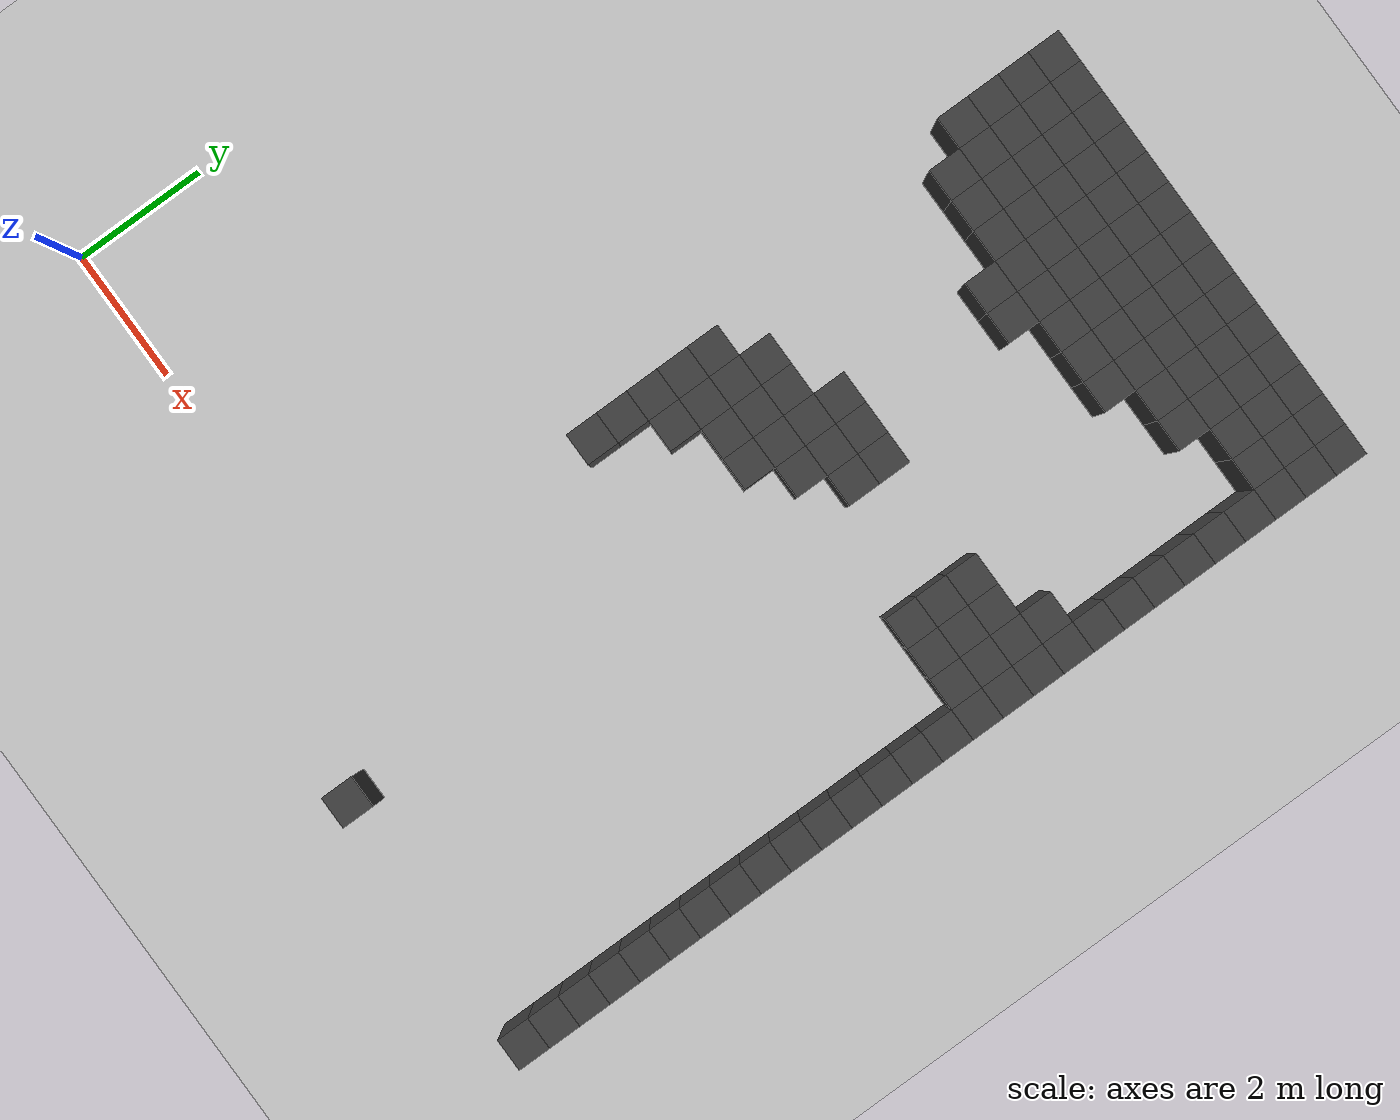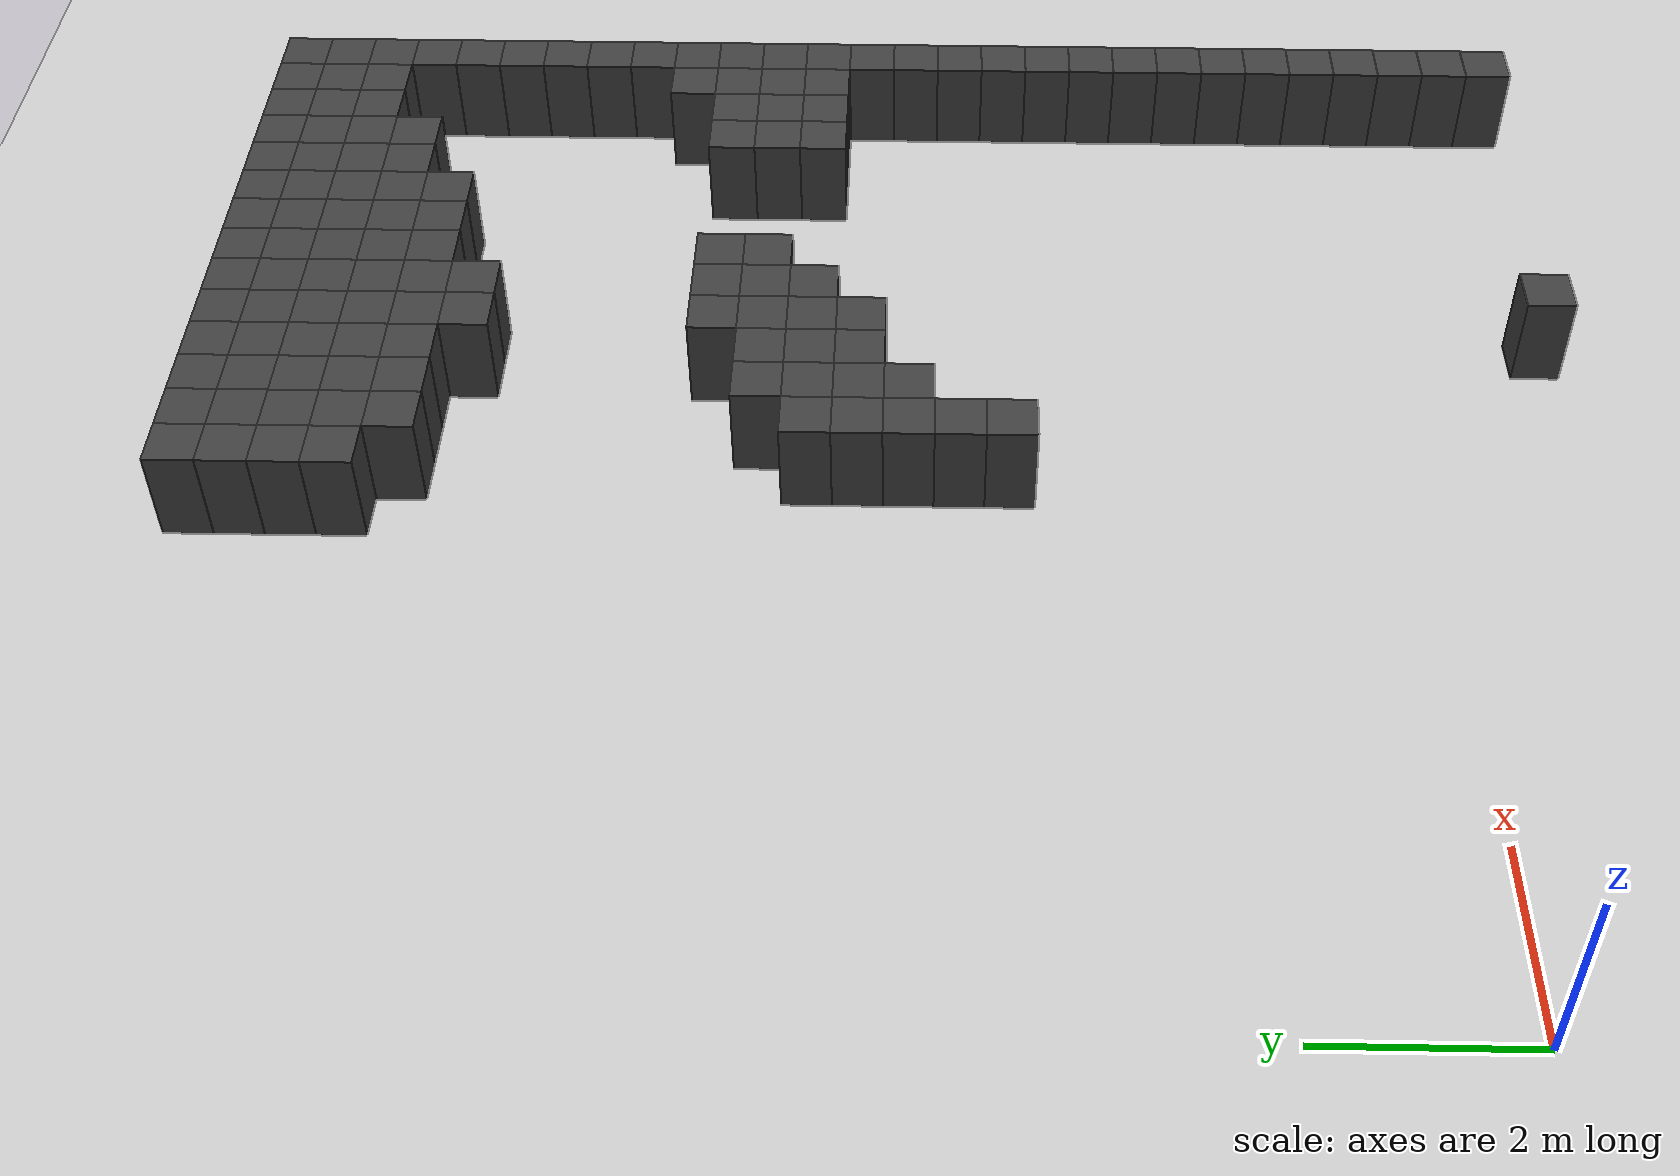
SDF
<sdf version="1.7">
 <world name="map_9381">
  <model name="ground_plane">
   <static>true</static>
   <link name="link">
    <collision name="collision">
     <geometry><plane><normal>0 0 1</normal><size>200 200</size></plane></geometry>
    </collision>
    <visual name="visual">
     <geometry><plane><normal>0 0 1</normal><size>200 200</size></plane></geometry>
     <material><ambient>0.8 0.8 0.8 1</ambient><diffuse>0.8 0.8 0.8 1</diffuse></material>
    </visual>
   </link>
  </model>
  <model name="maze_environment">
   <static>true</static>
   <link name="wall_36">
    <pose>5.750 12.250 0.500 0 0 0</pose>
    <collision name="col"><geometry><box><size>0.5 0.5 1.0</size></box></geometry></collision>
    <visual name="vis">
     <geometry><box><size>0.5 0.5 1.0</size></box></geometry>
     <material><ambient>0.15 0.15 0.15 1</ambient><diffuse>0.25 0.25 0.25 1</diffuse></material>
    </visual>
   </link>
   <link name="wall_37">
    <pose>6.250 12.250 0.500 0 0 0</pose>
    <collision name="col"><geometry><box><size>0.5 0.5 1.0</size></box></geometry></collision>
    <visual name="vis">
     <geometry><box><size>0.5 0.5 1.0</size></box></geometry>
     <material><ambient>0.15 0.15 0.15 1</ambient><diffuse>0.25 0.25 0.25 1</diffuse></material>
    </visual>
   </link>
   <link name="wall_38">
    <pose>6.750 12.250 0.500 0 0 0</pose>
    <collision name="col"><geometry><box><size>0.5 0.5 1.0</size></box></geometry></collision>
    <visual name="vis">
     <geometry><box><size>0.5 0.5 1.0</size></box></geometry>
     <material><ambient>0.15 0.15 0.15 1</ambient><diffuse>0.25 0.25 0.25 1</diffuse></material>
    </visual>
   </link>
   <link name="wall_39">
    <pose>7.250 12.250 0.500 0 0 0</pose>
    <collision name="col"><geometry><box><size>0.5 0.5 1.0</size></box></geometry></collision>
    <visual name="vis">
     <geometry><box><size>0.5 0.5 1.0</size></box></geometry>
     <material><ambient>0.15 0.15 0.15 1</ambient><diffuse>0.25 0.25 0.25 1</diffuse></material>
    </visual>
   </link>
   <link name="wall_40">
    <pose>7.750 12.250 0.500 0 0 0</pose>
    <collision name="col"><geometry><box><size>0.5 0.5 1.0</size></box></geometry></collision>
    <visual name="vis">
     <geometry><box><size>0.5 0.5 1.0</size></box></geometry>
     <material><ambient>0.15 0.15 0.15 1</ambient><diffuse>0.25 0.25 0.25 1</diffuse></material>
    </visual>
   </link>
   <link name="wall_41">
    <pose>8.250 12.250 0.500 0 0 0</pose>
    <collision name="col"><geometry><box><size>0.5 0.5 1.0</size></box></geometry></collision>
    <visual name="vis">
     <geometry><box><size>0.5 0.5 1.0</size></box></geometry>
     <material><ambient>0.15 0.15 0.15 1</ambient><diffuse>0.25 0.25 0.25 1</diffuse></material>
    </visual>
   </link>
   <link name="wall_42">
    <pose>8.750 12.250 0.500 0 0 0</pose>
    <collision name="col"><geometry><box><size>0.5 0.5 1.0</size></box></geometry></collision>
    <visual name="vis">
     <geometry><box><size>0.5 0.5 1.0</size></box></geometry>
     <material><ambient>0.15 0.15 0.15 1</ambient><diffuse>0.25 0.25 0.25 1</diffuse></material>
    </visual>
   </link>
   <link name="wall_43">
    <pose>9.250 12.250 0.500 0 0 0</pose>
    <collision name="col"><geometry><box><size>0.5 0.5 1.0</size></box></geometry></collision>
    <visual name="vis">
     <geometry><box><size>0.5 0.5 1.0</size></box></geometry>
     <material><ambient>0.15 0.15 0.15 1</ambient><diffuse>0.25 0.25 0.25 1</diffuse></material>
    </visual>
   </link>
   <link name="wall_44">
    <pose>9.750 12.250 0.500 0 0 0</pose>
    <collision name="col"><geometry><box><size>0.5 0.5 1.0</size></box></geometry></collision>
    <visual name="vis">
     <geometry><box><size>0.5 0.5 1.0</size></box></geometry>
     <material><ambient>0.15 0.15 0.15 1</ambient><diffuse>0.25 0.25 0.25 1</diffuse></material>
    </visual>
   </link>
   <link name="wall_45">
    <pose>10.250 12.250 0.500 0 0 0</pose>
    <collision name="col"><geometry><box><size>0.5 0.5 1.0</size></box></geometry></collision>
    <visual name="vis">
     <geometry><box><size>0.5 0.5 1.0</size></box></geometry>
     <material><ambient>0.15 0.15 0.15 1</ambient><diffuse>0.25 0.25 0.25 1</diffuse></material>
    </visual>
   </link>
   <link name="wall_46">
    <pose>10.750 12.250 0.500 0 0 0</pose>
    <collision name="col"><geometry><box><size>0.5 0.5 1.0</size></box></geometry></collision>
    <visual name="vis">
     <geometry><box><size>0.5 0.5 1.0</size></box></geometry>
     <material><ambient>0.15 0.15 0.15 1</ambient><diffuse>0.25 0.25 0.25 1</diffuse></material>
    </visual>
   </link>
   <link name="wall_47">
    <pose>11.250 12.250 0.500 0 0 0</pose>
    <collision name="col"><geometry><box><size>0.5 0.5 1.0</size></box></geometry></collision>
    <visual name="vis">
     <geometry><box><size>0.5 0.5 1.0</size></box></geometry>
     <material><ambient>0.15 0.15 0.15 1</ambient><diffuse>0.25 0.25 0.25 1</diffuse></material>
    </visual>
   </link>
   <link name="wall_48">
    <pose>11.750 12.250 0.500 0 0 0</pose>
    <collision name="col"><geometry><box><size>0.5 0.5 1.0</size></box></geometry></collision>
    <visual name="vis">
     <geometry><box><size>0.5 0.5 1.0</size></box></geometry>
     <material><ambient>0.15 0.15 0.15 1</ambient><diffuse>0.25 0.25 0.25 1</diffuse></material>
    </visual>
   </link>
   <link name="wall_49">
    <pose>12.250 12.250 0.500 0 0 0</pose>
    <collision name="col"><geometry><box><size>0.5 0.5 1.0</size></box></geometry></collision>
    <visual name="vis">
     <geometry><box><size>0.5 0.5 1.0</size></box></geometry>
     <material><ambient>0.15 0.15 0.15 1</ambient><diffuse>0.25 0.25 0.25 1</diffuse></material>
    </visual>
   </link>
   <link name="wall_71">
    <pose>5.750 11.750 0.500 0 0 0</pose>
    <collision name="col"><geometry><box><size>0.5 0.5 1.0</size></box></geometry></collision>
    <visual name="vis">
     <geometry><box><size>0.5 0.5 1.0</size></box></geometry>
     <material><ambient>0.15 0.15 0.15 1</ambient><diffuse>0.25 0.25 0.25 1</diffuse></material>
    </visual>
   </link>
   <link name="wall_72">
    <pose>6.250 11.750 0.500 0 0 0</pose>
    <collision name="col"><geometry><box><size>0.5 0.5 1.0</size></box></geometry></collision>
    <visual name="vis">
     <geometry><box><size>0.5 0.5 1.0</size></box></geometry>
     <material><ambient>0.15 0.15 0.15 1</ambient><diffuse>0.25 0.25 0.25 1</diffuse></material>
    </visual>
   </link>
   <link name="wall_73">
    <pose>6.750 11.750 0.500 0 0 0</pose>
    <collision name="col"><geometry><box><size>0.5 0.5 1.0</size></box></geometry></collision>
    <visual name="vis">
     <geometry><box><size>0.5 0.5 1.0</size></box></geometry>
     <material><ambient>0.15 0.15 0.15 1</ambient><diffuse>0.25 0.25 0.25 1</diffuse></material>
    </visual>
   </link>
   <link name="wall_74">
    <pose>7.250 11.750 0.500 0 0 0</pose>
    <collision name="col"><geometry><box><size>0.5 0.5 1.0</size></box></geometry></collision>
    <visual name="vis">
     <geometry><box><size>0.5 0.5 1.0</size></box></geometry>
     <material><ambient>0.15 0.15 0.15 1</ambient><diffuse>0.25 0.25 0.25 1</diffuse></material>
    </visual>
   </link>
   <link name="wall_75">
    <pose>7.750 11.750 0.500 0 0 0</pose>
    <collision name="col"><geometry><box><size>0.5 0.5 1.0</size></box></geometry></collision>
    <visual name="vis">
     <geometry><box><size>0.5 0.5 1.0</size></box></geometry>
     <material><ambient>0.15 0.15 0.15 1</ambient><diffuse>0.25 0.25 0.25 1</diffuse></material>
    </visual>
   </link>
   <link name="wall_76">
    <pose>8.250 11.750 0.500 0 0 0</pose>
    <collision name="col"><geometry><box><size>0.5 0.5 1.0</size></box></geometry></collision>
    <visual name="vis">
     <geometry><box><size>0.5 0.5 1.0</size></box></geometry>
     <material><ambient>0.15 0.15 0.15 1</ambient><diffuse>0.25 0.25 0.25 1</diffuse></material>
    </visual>
   </link>
   <link name="wall_77">
    <pose>8.750 11.750 0.500 0 0 0</pose>
    <collision name="col"><geometry><box><size>0.5 0.5 1.0</size></box></geometry></collision>
    <visual name="vis">
     <geometry><box><size>0.5 0.5 1.0</size></box></geometry>
     <material><ambient>0.15 0.15 0.15 1</ambient><diffuse>0.25 0.25 0.25 1</diffuse></material>
    </visual>
   </link>
   <link name="wall_78">
    <pose>9.250 11.750 0.500 0 0 0</pose>
    <collision name="col"><geometry><box><size>0.5 0.5 1.0</size></box></geometry></collision>
    <visual name="vis">
     <geometry><box><size>0.5 0.5 1.0</size></box></geometry>
     <material><ambient>0.15 0.15 0.15 1</ambient><diffuse>0.25 0.25 0.25 1</diffuse></material>
    </visual>
   </link>
   <link name="wall_79">
    <pose>9.750 11.750 0.500 0 0 0</pose>
    <collision name="col"><geometry><box><size>0.5 0.5 1.0</size></box></geometry></collision>
    <visual name="vis">
     <geometry><box><size>0.5 0.5 1.0</size></box></geometry>
     <material><ambient>0.15 0.15 0.15 1</ambient><diffuse>0.25 0.25 0.25 1</diffuse></material>
    </visual>
   </link>
   <link name="wall_80">
    <pose>10.250 11.750 0.500 0 0 0</pose>
    <collision name="col"><geometry><box><size>0.5 0.5 1.0</size></box></geometry></collision>
    <visual name="vis">
     <geometry><box><size>0.5 0.5 1.0</size></box></geometry>
     <material><ambient>0.15 0.15 0.15 1</ambient><diffuse>0.25 0.25 0.25 1</diffuse></material>
    </visual>
   </link>
   <link name="wall_81">
    <pose>10.750 11.750 0.500 0 0 0</pose>
    <collision name="col"><geometry><box><size>0.5 0.5 1.0</size></box></geometry></collision>
    <visual name="vis">
     <geometry><box><size>0.5 0.5 1.0</size></box></geometry>
     <material><ambient>0.15 0.15 0.15 1</ambient><diffuse>0.25 0.25 0.25 1</diffuse></material>
    </visual>
   </link>
   <link name="wall_82">
    <pose>11.250 11.750 0.500 0 0 0</pose>
    <collision name="col"><geometry><box><size>0.5 0.5 1.0</size></box></geometry></collision>
    <visual name="vis">
     <geometry><box><size>0.5 0.5 1.0</size></box></geometry>
     <material><ambient>0.15 0.15 0.15 1</ambient><diffuse>0.25 0.25 0.25 1</diffuse></material>
    </visual>
   </link>
   <link name="wall_83">
    <pose>11.750 11.750 0.500 0 0 0</pose>
    <collision name="col"><geometry><box><size>0.5 0.5 1.0</size></box></geometry></collision>
    <visual name="vis">
     <geometry><box><size>0.5 0.5 1.0</size></box></geometry>
     <material><ambient>0.15 0.15 0.15 1</ambient><diffuse>0.25 0.25 0.25 1</diffuse></material>
    </visual>
   </link>
   <link name="wall_84">
    <pose>12.250 11.750 0.500 0 0 0</pose>
    <collision name="col"><geometry><box><size>0.5 0.5 1.0</size></box></geometry></collision>
    <visual name="vis">
     <geometry><box><size>0.5 0.5 1.0</size></box></geometry>
     <material><ambient>0.15 0.15 0.15 1</ambient><diffuse>0.25 0.25 0.25 1</diffuse></material>
    </visual>
   </link>
   <link name="wall_101">
    <pose>5.750 11.250 0.500 0 0 0</pose>
    <collision name="col"><geometry><box><size>0.5 0.5 1.0</size></box></geometry></collision>
    <visual name="vis">
     <geometry><box><size>0.5 0.5 1.0</size></box></geometry>
     <material><ambient>0.15 0.15 0.15 1</ambient><diffuse>0.25 0.25 0.25 1</diffuse></material>
    </visual>
   </link>
   <link name="wall_102">
    <pose>6.250 11.250 0.500 0 0 0</pose>
    <collision name="col"><geometry><box><size>0.5 0.5 1.0</size></box></geometry></collision>
    <visual name="vis">
     <geometry><box><size>0.5 0.5 1.0</size></box></geometry>
     <material><ambient>0.15 0.15 0.15 1</ambient><diffuse>0.25 0.25 0.25 1</diffuse></material>
    </visual>
   </link>
   <link name="wall_103">
    <pose>6.750 11.250 0.500 0 0 0</pose>
    <collision name="col"><geometry><box><size>0.5 0.5 1.0</size></box></geometry></collision>
    <visual name="vis">
     <geometry><box><size>0.5 0.5 1.0</size></box></geometry>
     <material><ambient>0.15 0.15 0.15 1</ambient><diffuse>0.25 0.25 0.25 1</diffuse></material>
    </visual>
   </link>
   <link name="wall_104">
    <pose>7.250 11.250 0.500 0 0 0</pose>
    <collision name="col"><geometry><box><size>0.5 0.5 1.0</size></box></geometry></collision>
    <visual name="vis">
     <geometry><box><size>0.5 0.5 1.0</size></box></geometry>
     <material><ambient>0.15 0.15 0.15 1</ambient><diffuse>0.25 0.25 0.25 1</diffuse></material>
    </visual>
   </link>
   <link name="wall_105">
    <pose>7.750 11.250 0.500 0 0 0</pose>
    <collision name="col"><geometry><box><size>0.5 0.5 1.0</size></box></geometry></collision>
    <visual name="vis">
     <geometry><box><size>0.5 0.5 1.0</size></box></geometry>
     <material><ambient>0.15 0.15 0.15 1</ambient><diffuse>0.25 0.25 0.25 1</diffuse></material>
    </visual>
   </link>
   <link name="wall_106">
    <pose>8.250 11.250 0.500 0 0 0</pose>
    <collision name="col"><geometry><box><size>0.5 0.5 1.0</size></box></geometry></collision>
    <visual name="vis">
     <geometry><box><size>0.5 0.5 1.0</size></box></geometry>
     <material><ambient>0.15 0.15 0.15 1</ambient><diffuse>0.25 0.25 0.25 1</diffuse></material>
    </visual>
   </link>
   <link name="wall_107">
    <pose>8.750 11.250 0.500 0 0 0</pose>
    <collision name="col"><geometry><box><size>0.5 0.5 1.0</size></box></geometry></collision>
    <visual name="vis">
     <geometry><box><size>0.5 0.5 1.0</size></box></geometry>
     <material><ambient>0.15 0.15 0.15 1</ambient><diffuse>0.25 0.25 0.25 1</diffuse></material>
    </visual>
   </link>
   <link name="wall_108">
    <pose>9.250 11.250 0.500 0 0 0</pose>
    <collision name="col"><geometry><box><size>0.5 0.5 1.0</size></box></geometry></collision>
    <visual name="vis">
     <geometry><box><size>0.5 0.5 1.0</size></box></geometry>
     <material><ambient>0.15 0.15 0.15 1</ambient><diffuse>0.25 0.25 0.25 1</diffuse></material>
    </visual>
   </link>
   <link name="wall_109">
    <pose>9.750 11.250 0.500 0 0 0</pose>
    <collision name="col"><geometry><box><size>0.5 0.5 1.0</size></box></geometry></collision>
    <visual name="vis">
     <geometry><box><size>0.5 0.5 1.0</size></box></geometry>
     <material><ambient>0.15 0.15 0.15 1</ambient><diffuse>0.25 0.25 0.25 1</diffuse></material>
    </visual>
   </link>
   <link name="wall_110">
    <pose>10.250 11.250 0.500 0 0 0</pose>
    <collision name="col"><geometry><box><size>0.5 0.5 1.0</size></box></geometry></collision>
    <visual name="vis">
     <geometry><box><size>0.5 0.5 1.0</size></box></geometry>
     <material><ambient>0.15 0.15 0.15 1</ambient><diffuse>0.25 0.25 0.25 1</diffuse></material>
    </visual>
   </link>
   <link name="wall_111">
    <pose>10.750 11.250 0.500 0 0 0</pose>
    <collision name="col"><geometry><box><size>0.5 0.5 1.0</size></box></geometry></collision>
    <visual name="vis">
     <geometry><box><size>0.5 0.5 1.0</size></box></geometry>
     <material><ambient>0.15 0.15 0.15 1</ambient><diffuse>0.25 0.25 0.25 1</diffuse></material>
    </visual>
   </link>
   <link name="wall_112">
    <pose>11.250 11.250 0.500 0 0 0</pose>
    <collision name="col"><geometry><box><size>0.5 0.5 1.0</size></box></geometry></collision>
    <visual name="vis">
     <geometry><box><size>0.5 0.5 1.0</size></box></geometry>
     <material><ambient>0.15 0.15 0.15 1</ambient><diffuse>0.25 0.25 0.25 1</diffuse></material>
    </visual>
   </link>
   <link name="wall_113">
    <pose>11.750 11.250 0.500 0 0 0</pose>
    <collision name="col"><geometry><box><size>0.5 0.5 1.0</size></box></geometry></collision>
    <visual name="vis">
     <geometry><box><size>0.5 0.5 1.0</size></box></geometry>
     <material><ambient>0.15 0.15 0.15 1</ambient><diffuse>0.25 0.25 0.25 1</diffuse></material>
    </visual>
   </link>
   <link name="wall_114">
    <pose>12.250 11.250 0.500 0 0 0</pose>
    <collision name="col"><geometry><box><size>0.5 0.5 1.0</size></box></geometry></collision>
    <visual name="vis">
     <geometry><box><size>0.5 0.5 1.0</size></box></geometry>
     <material><ambient>0.15 0.15 0.15 1</ambient><diffuse>0.25 0.25 0.25 1</diffuse></material>
    </visual>
   </link>
   <link name="wall_129">
    <pose>5.750 10.750 0.500 0 0 0</pose>
    <collision name="col"><geometry><box><size>0.5 0.5 1.0</size></box></geometry></collision>
    <visual name="vis">
     <geometry><box><size>0.5 0.5 1.0</size></box></geometry>
     <material><ambient>0.15 0.15 0.15 1</ambient><diffuse>0.25 0.25 0.25 1</diffuse></material>
    </visual>
   </link>
   <link name="wall_130">
    <pose>6.250 10.750 0.500 0 0 0</pose>
    <collision name="col"><geometry><box><size>0.5 0.5 1.0</size></box></geometry></collision>
    <visual name="vis">
     <geometry><box><size>0.5 0.5 1.0</size></box></geometry>
     <material><ambient>0.15 0.15 0.15 1</ambient><diffuse>0.25 0.25 0.25 1</diffuse></material>
    </visual>
   </link>
   <link name="wall_131">
    <pose>6.750 10.750 0.500 0 0 0</pose>
    <collision name="col"><geometry><box><size>0.5 0.5 1.0</size></box></geometry></collision>
    <visual name="vis">
     <geometry><box><size>0.5 0.5 1.0</size></box></geometry>
     <material><ambient>0.15 0.15 0.15 1</ambient><diffuse>0.25 0.25 0.25 1</diffuse></material>
    </visual>
   </link>
   <link name="wall_132">
    <pose>7.250 10.750 0.500 0 0 0</pose>
    <collision name="col"><geometry><box><size>0.5 0.5 1.0</size></box></geometry></collision>
    <visual name="vis">
     <geometry><box><size>0.5 0.5 1.0</size></box></geometry>
     <material><ambient>0.15 0.15 0.15 1</ambient><diffuse>0.25 0.25 0.25 1</diffuse></material>
    </visual>
   </link>
   <link name="wall_133">
    <pose>7.750 10.750 0.500 0 0 0</pose>
    <collision name="col"><geometry><box><size>0.5 0.5 1.0</size></box></geometry></collision>
    <visual name="vis">
     <geometry><box><size>0.5 0.5 1.0</size></box></geometry>
     <material><ambient>0.15 0.15 0.15 1</ambient><diffuse>0.25 0.25 0.25 1</diffuse></material>
    </visual>
   </link>
   <link name="wall_134">
    <pose>8.250 10.750 0.500 0 0 0</pose>
    <collision name="col"><geometry><box><size>0.5 0.5 1.0</size></box></geometry></collision>
    <visual name="vis">
     <geometry><box><size>0.5 0.5 1.0</size></box></geometry>
     <material><ambient>0.15 0.15 0.15 1</ambient><diffuse>0.25 0.25 0.25 1</diffuse></material>
    </visual>
   </link>
   <link name="wall_135">
    <pose>8.750 10.750 0.500 0 0 0</pose>
    <collision name="col"><geometry><box><size>0.5 0.5 1.0</size></box></geometry></collision>
    <visual name="vis">
     <geometry><box><size>0.5 0.5 1.0</size></box></geometry>
     <material><ambient>0.15 0.15 0.15 1</ambient><diffuse>0.25 0.25 0.25 1</diffuse></material>
    </visual>
   </link>
   <link name="wall_136">
    <pose>9.250 10.750 0.500 0 0 0</pose>
    <collision name="col"><geometry><box><size>0.5 0.5 1.0</size></box></geometry></collision>
    <visual name="vis">
     <geometry><box><size>0.5 0.5 1.0</size></box></geometry>
     <material><ambient>0.15 0.15 0.15 1</ambient><diffuse>0.25 0.25 0.25 1</diffuse></material>
    </visual>
   </link>
   <link name="wall_137">
    <pose>9.750 10.750 0.500 0 0 0</pose>
    <collision name="col"><geometry><box><size>0.5 0.5 1.0</size></box></geometry></collision>
    <visual name="vis">
     <geometry><box><size>0.5 0.5 1.0</size></box></geometry>
     <material><ambient>0.15 0.15 0.15 1</ambient><diffuse>0.25 0.25 0.25 1</diffuse></material>
    </visual>
   </link>
   <link name="wall_138">
    <pose>10.250 10.750 0.500 0 0 0</pose>
    <collision name="col"><geometry><box><size>0.5 0.5 1.0</size></box></geometry></collision>
    <visual name="vis">
     <geometry><box><size>0.5 0.5 1.0</size></box></geometry>
     <material><ambient>0.15 0.15 0.15 1</ambient><diffuse>0.25 0.25 0.25 1</diffuse></material>
    </visual>
   </link>
   <link name="wall_139">
    <pose>10.750 10.750 0.500 0 0 0</pose>
    <collision name="col"><geometry><box><size>0.5 0.5 1.0</size></box></geometry></collision>
    <visual name="vis">
     <geometry><box><size>0.5 0.5 1.0</size></box></geometry>
     <material><ambient>0.15 0.15 0.15 1</ambient><diffuse>0.25 0.25 0.25 1</diffuse></material>
    </visual>
   </link>
   <link name="wall_140">
    <pose>12.250 10.750 0.500 0 0 0</pose>
    <collision name="col"><geometry><box><size>0.5 0.5 1.0</size></box></geometry></collision>
    <visual name="vis">
     <geometry><box><size>0.5 0.5 1.0</size></box></geometry>
     <material><ambient>0.15 0.15 0.15 1</ambient><diffuse>0.25 0.25 0.25 1</diffuse></material>
    </visual>
   </link>
   <link name="wall_156">
    <pose>6.250 10.250 0.500 0 0 0</pose>
    <collision name="col"><geometry><box><size>0.5 0.5 1.0</size></box></geometry></collision>
    <visual name="vis">
     <geometry><box><size>0.5 0.5 1.0</size></box></geometry>
     <material><ambient>0.15 0.15 0.15 1</ambient><diffuse>0.25 0.25 0.25 1</diffuse></material>
    </visual>
   </link>
   <link name="wall_157">
    <pose>6.750 10.250 0.500 0 0 0</pose>
    <collision name="col"><geometry><box><size>0.5 0.5 1.0</size></box></geometry></collision>
    <visual name="vis">
     <geometry><box><size>0.5 0.5 1.0</size></box></geometry>
     <material><ambient>0.15 0.15 0.15 1</ambient><diffuse>0.25 0.25 0.25 1</diffuse></material>
    </visual>
   </link>
   <link name="wall_158">
    <pose>7.250 10.250 0.500 0 0 0</pose>
    <collision name="col"><geometry><box><size>0.5 0.5 1.0</size></box></geometry></collision>
    <visual name="vis">
     <geometry><box><size>0.5 0.5 1.0</size></box></geometry>
     <material><ambient>0.15 0.15 0.15 1</ambient><diffuse>0.25 0.25 0.25 1</diffuse></material>
    </visual>
   </link>
   <link name="wall_159">
    <pose>7.750 10.250 0.500 0 0 0</pose>
    <collision name="col"><geometry><box><size>0.5 0.5 1.0</size></box></geometry></collision>
    <visual name="vis">
     <geometry><box><size>0.5 0.5 1.0</size></box></geometry>
     <material><ambient>0.15 0.15 0.15 1</ambient><diffuse>0.25 0.25 0.25 1</diffuse></material>
    </visual>
   </link>
   <link name="wall_160">
    <pose>8.250 10.250 0.500 0 0 0</pose>
    <collision name="col"><geometry><box><size>0.5 0.5 1.0</size></box></geometry></collision>
    <visual name="vis">
     <geometry><box><size>0.5 0.5 1.0</size></box></geometry>
     <material><ambient>0.15 0.15 0.15 1</ambient><diffuse>0.25 0.25 0.25 1</diffuse></material>
    </visual>
   </link>
   <link name="wall_161">
    <pose>8.750 10.250 0.500 0 0 0</pose>
    <collision name="col"><geometry><box><size>0.5 0.5 1.0</size></box></geometry></collision>
    <visual name="vis">
     <geometry><box><size>0.5 0.5 1.0</size></box></geometry>
     <material><ambient>0.15 0.15 0.15 1</ambient><diffuse>0.25 0.25 0.25 1</diffuse></material>
    </visual>
   </link>
   <link name="wall_162">
    <pose>9.250 10.250 0.500 0 0 0</pose>
    <collision name="col"><geometry><box><size>0.5 0.5 1.0</size></box></geometry></collision>
    <visual name="vis">
     <geometry><box><size>0.5 0.5 1.0</size></box></geometry>
     <material><ambient>0.15 0.15 0.15 1</ambient><diffuse>0.25 0.25 0.25 1</diffuse></material>
    </visual>
   </link>
   <link name="wall_163">
    <pose>9.750 10.250 0.500 0 0 0</pose>
    <collision name="col"><geometry><box><size>0.5 0.5 1.0</size></box></geometry></collision>
    <visual name="vis">
     <geometry><box><size>0.5 0.5 1.0</size></box></geometry>
     <material><ambient>0.15 0.15 0.15 1</ambient><diffuse>0.25 0.25 0.25 1</diffuse></material>
    </visual>
   </link>
   <link name="wall_164">
    <pose>12.250 10.250 0.500 0 0 0</pose>
    <collision name="col"><geometry><box><size>0.5 0.5 1.0</size></box></geometry></collision>
    <visual name="vis">
     <geometry><box><size>0.5 0.5 1.0</size></box></geometry>
     <material><ambient>0.15 0.15 0.15 1</ambient><diffuse>0.25 0.25 0.25 1</diffuse></material>
    </visual>
   </link>
   <link name="wall_179">
    <pose>7.750 9.750 0.500 0 0 0</pose>
    <collision name="col"><geometry><box><size>0.5 0.5 1.0</size></box></geometry></collision>
    <visual name="vis">
     <geometry><box><size>0.5 0.5 1.0</size></box></geometry>
     <material><ambient>0.15 0.15 0.15 1</ambient><diffuse>0.25 0.25 0.25 1</diffuse></material>
    </visual>
   </link>
   <link name="wall_180">
    <pose>8.250 9.750 0.500 0 0 0</pose>
    <collision name="col"><geometry><box><size>0.5 0.5 1.0</size></box></geometry></collision>
    <visual name="vis">
     <geometry><box><size>0.5 0.5 1.0</size></box></geometry>
     <material><ambient>0.15 0.15 0.15 1</ambient><diffuse>0.25 0.25 0.25 1</diffuse></material>
    </visual>
   </link>
   <link name="wall_181">
    <pose>12.250 9.750 0.500 0 0 0</pose>
    <collision name="col"><geometry><box><size>0.5 0.5 1.0</size></box></geometry></collision>
    <visual name="vis">
     <geometry><box><size>0.5 0.5 1.0</size></box></geometry>
     <material><ambient>0.15 0.15 0.15 1</ambient><diffuse>0.25 0.25 0.25 1</diffuse></material>
    </visual>
   </link>
   <link name="wall_194">
    <pose>12.250 9.250 0.500 0 0 0</pose>
    <collision name="col"><geometry><box><size>0.5 0.5 1.0</size></box></geometry></collision>
    <visual name="vis">
     <geometry><box><size>0.5 0.5 1.0</size></box></geometry>
     <material><ambient>0.15 0.15 0.15 1</ambient><diffuse>0.25 0.25 0.25 1</diffuse></material>
    </visual>
   </link>
   <link name="wall_202">
    <pose>12.250 8.750 0.500 0 0 0</pose>
    <collision name="col"><geometry><box><size>0.5 0.5 1.0</size></box></geometry></collision>
    <visual name="vis">
     <geometry><box><size>0.5 0.5 1.0</size></box></geometry>
     <material><ambient>0.15 0.15 0.15 1</ambient><diffuse>0.25 0.25 0.25 1</diffuse></material>
    </visual>
   </link>
   <link name="wall_208">
    <pose>12.250 8.250 0.500 0 0 0</pose>
    <collision name="col"><geometry><box><size>0.5 0.5 1.0</size></box></geometry></collision>
    <visual name="vis">
     <geometry><box><size>0.5 0.5 1.0</size></box></geometry>
     <material><ambient>0.15 0.15 0.15 1</ambient><diffuse>0.25 0.25 0.25 1</diffuse></material>
    </visual>
   </link>
   <link name="wall_214">
    <pose>11.750 7.750 0.500 0 0 0</pose>
    <collision name="col"><geometry><box><size>0.5 0.5 1.0</size></box></geometry></collision>
    <visual name="vis">
     <geometry><box><size>0.5 0.5 1.0</size></box></geometry>
     <material><ambient>0.15 0.15 0.15 1</ambient><diffuse>0.25 0.25 0.25 1</diffuse></material>
    </visual>
   </link>
   <link name="wall_215">
    <pose>12.250 7.750 0.500 0 0 0</pose>
    <collision name="col"><geometry><box><size>0.5 0.5 1.0</size></box></geometry></collision>
    <visual name="vis">
     <geometry><box><size>0.5 0.5 1.0</size></box></geometry>
     <material><ambient>0.15 0.15 0.15 1</ambient><diffuse>0.25 0.25 0.25 1</diffuse></material>
    </visual>
   </link>
   <link name="wall_221">
    <pose>7.750 7.250 0.500 0 0 0</pose>
    <collision name="col"><geometry><box><size>0.5 0.5 1.0</size></box></geometry></collision>
    <visual name="vis">
     <geometry><box><size>0.5 0.5 1.0</size></box></geometry>
     <material><ambient>0.15 0.15 0.15 1</ambient><diffuse>0.25 0.25 0.25 1</diffuse></material>
    </visual>
   </link>
   <link name="wall_222">
    <pose>8.250 7.250 0.500 0 0 0</pose>
    <collision name="col"><geometry><box><size>0.5 0.5 1.0</size></box></geometry></collision>
    <visual name="vis">
     <geometry><box><size>0.5 0.5 1.0</size></box></geometry>
     <material><ambient>0.15 0.15 0.15 1</ambient><diffuse>0.25 0.25 0.25 1</diffuse></material>
    </visual>
   </link>
   <link name="wall_223">
    <pose>8.750 7.250 0.500 0 0 0</pose>
    <collision name="col"><geometry><box><size>0.5 0.5 1.0</size></box></geometry></collision>
    <visual name="vis">
     <geometry><box><size>0.5 0.5 1.0</size></box></geometry>
     <material><ambient>0.15 0.15 0.15 1</ambient><diffuse>0.25 0.25 0.25 1</diffuse></material>
    </visual>
   </link>
   <link name="wall_224">
    <pose>10.750 7.250 0.500 0 0 0</pose>
    <collision name="col"><geometry><box><size>0.5 0.5 1.0</size></box></geometry></collision>
    <visual name="vis">
     <geometry><box><size>0.5 0.5 1.0</size></box></geometry>
     <material><ambient>0.15 0.15 0.15 1</ambient><diffuse>0.25 0.25 0.25 1</diffuse></material>
    </visual>
   </link>
   <link name="wall_225">
    <pose>11.250 7.250 0.500 0 0 0</pose>
    <collision name="col"><geometry><box><size>0.5 0.5 1.0</size></box></geometry></collision>
    <visual name="vis">
     <geometry><box><size>0.5 0.5 1.0</size></box></geometry>
     <material><ambient>0.15 0.15 0.15 1</ambient><diffuse>0.25 0.25 0.25 1</diffuse></material>
    </visual>
   </link>
   <link name="wall_226">
    <pose>11.750 7.250 0.500 0 0 0</pose>
    <collision name="col"><geometry><box><size>0.5 0.5 1.0</size></box></geometry></collision>
    <visual name="vis">
     <geometry><box><size>0.5 0.5 1.0</size></box></geometry>
     <material><ambient>0.15 0.15 0.15 1</ambient><diffuse>0.25 0.25 0.25 1</diffuse></material>
    </visual>
   </link>
   <link name="wall_227">
    <pose>12.250 7.250 0.500 0 0 0</pose>
    <collision name="col"><geometry><box><size>0.5 0.5 1.0</size></box></geometry></collision>
    <visual name="vis">
     <geometry><box><size>0.5 0.5 1.0</size></box></geometry>
     <material><ambient>0.15 0.15 0.15 1</ambient><diffuse>0.25 0.25 0.25 1</diffuse></material>
    </visual>
   </link>
   <link name="wall_234">
    <pose>6.750 6.750 0.500 0 0 0</pose>
    <collision name="col"><geometry><box><size>0.5 0.5 1.0</size></box></geometry></collision>
    <visual name="vis">
     <geometry><box><size>0.5 0.5 1.0</size></box></geometry>
     <material><ambient>0.15 0.15 0.15 1</ambient><diffuse>0.25 0.25 0.25 1</diffuse></material>
    </visual>
   </link>
   <link name="wall_235">
    <pose>7.250 6.750 0.500 0 0 0</pose>
    <collision name="col"><geometry><box><size>0.5 0.5 1.0</size></box></geometry></collision>
    <visual name="vis">
     <geometry><box><size>0.5 0.5 1.0</size></box></geometry>
     <material><ambient>0.15 0.15 0.15 1</ambient><diffuse>0.25 0.25 0.25 1</diffuse></material>
    </visual>
   </link>
   <link name="wall_236">
    <pose>7.750 6.750 0.500 0 0 0</pose>
    <collision name="col"><geometry><box><size>0.5 0.5 1.0</size></box></geometry></collision>
    <visual name="vis">
     <geometry><box><size>0.5 0.5 1.0</size></box></geometry>
     <material><ambient>0.15 0.15 0.15 1</ambient><diffuse>0.25 0.25 0.25 1</diffuse></material>
    </visual>
   </link>
   <link name="wall_237">
    <pose>8.250 6.750 0.500 0 0 0</pose>
    <collision name="col"><geometry><box><size>0.5 0.5 1.0</size></box></geometry></collision>
    <visual name="vis">
     <geometry><box><size>0.5 0.5 1.0</size></box></geometry>
     <material><ambient>0.15 0.15 0.15 1</ambient><diffuse>0.25 0.25 0.25 1</diffuse></material>
    </visual>
   </link>
   <link name="wall_238">
    <pose>8.750 6.750 0.500 0 0 0</pose>
    <collision name="col"><geometry><box><size>0.5 0.5 1.0</size></box></geometry></collision>
    <visual name="vis">
     <geometry><box><size>0.5 0.5 1.0</size></box></geometry>
     <material><ambient>0.15 0.15 0.15 1</ambient><diffuse>0.25 0.25 0.25 1</diffuse></material>
    </visual>
   </link>
   <link name="wall_239">
    <pose>10.750 6.750 0.500 0 0 0</pose>
    <collision name="col"><geometry><box><size>0.5 0.5 1.0</size></box></geometry></collision>
    <visual name="vis">
     <geometry><box><size>0.5 0.5 1.0</size></box></geometry>
     <material><ambient>0.15 0.15 0.15 1</ambient><diffuse>0.25 0.25 0.25 1</diffuse></material>
    </visual>
   </link>
   <link name="wall_240">
    <pose>11.250 6.750 0.500 0 0 0</pose>
    <collision name="col"><geometry><box><size>0.5 0.5 1.0</size></box></geometry></collision>
    <visual name="vis">
     <geometry><box><size>0.5 0.5 1.0</size></box></geometry>
     <material><ambient>0.15 0.15 0.15 1</ambient><diffuse>0.25 0.25 0.25 1</diffuse></material>
    </visual>
   </link>
   <link name="wall_241">
    <pose>11.750 6.750 0.500 0 0 0</pose>
    <collision name="col"><geometry><box><size>0.5 0.5 1.0</size></box></geometry></collision>
    <visual name="vis">
     <geometry><box><size>0.5 0.5 1.0</size></box></geometry>
     <material><ambient>0.15 0.15 0.15 1</ambient><diffuse>0.25 0.25 0.25 1</diffuse></material>
    </visual>
   </link>
   <link name="wall_242">
    <pose>12.250 6.750 0.500 0 0 0</pose>
    <collision name="col"><geometry><box><size>0.5 0.5 1.0</size></box></geometry></collision>
    <visual name="vis">
     <geometry><box><size>0.5 0.5 1.0</size></box></geometry>
     <material><ambient>0.15 0.15 0.15 1</ambient><diffuse>0.25 0.25 0.25 1</diffuse></material>
    </visual>
   </link>
   <link name="wall_250">
    <pose>6.250 6.250 0.500 0 0 0</pose>
    <collision name="col"><geometry><box><size>0.5 0.5 1.0</size></box></geometry></collision>
    <visual name="vis">
     <geometry><box><size>0.5 0.5 1.0</size></box></geometry>
     <material><ambient>0.15 0.15 0.15 1</ambient><diffuse>0.25 0.25 0.25 1</diffuse></material>
    </visual>
   </link>
   <link name="wall_251">
    <pose>6.750 6.250 0.500 0 0 0</pose>
    <collision name="col"><geometry><box><size>0.5 0.5 1.0</size></box></geometry></collision>
    <visual name="vis">
     <geometry><box><size>0.5 0.5 1.0</size></box></geometry>
     <material><ambient>0.15 0.15 0.15 1</ambient><diffuse>0.25 0.25 0.25 1</diffuse></material>
    </visual>
   </link>
   <link name="wall_252">
    <pose>7.250 6.250 0.500 0 0 0</pose>
    <collision name="col"><geometry><box><size>0.5 0.5 1.0</size></box></geometry></collision>
    <visual name="vis">
     <geometry><box><size>0.5 0.5 1.0</size></box></geometry>
     <material><ambient>0.15 0.15 0.15 1</ambient><diffuse>0.25 0.25 0.25 1</diffuse></material>
    </visual>
   </link>
   <link name="wall_253">
    <pose>7.750 6.250 0.500 0 0 0</pose>
    <collision name="col"><geometry><box><size>0.5 0.5 1.0</size></box></geometry></collision>
    <visual name="vis">
     <geometry><box><size>0.5 0.5 1.0</size></box></geometry>
     <material><ambient>0.15 0.15 0.15 1</ambient><diffuse>0.25 0.25 0.25 1</diffuse></material>
    </visual>
   </link>
   <link name="wall_254">
    <pose>8.250 6.250 0.500 0 0 0</pose>
    <collision name="col"><geometry><box><size>0.5 0.5 1.0</size></box></geometry></collision>
    <visual name="vis">
     <geometry><box><size>0.5 0.5 1.0</size></box></geometry>
     <material><ambient>0.15 0.15 0.15 1</ambient><diffuse>0.25 0.25 0.25 1</diffuse></material>
    </visual>
   </link>
   <link name="wall_255">
    <pose>10.750 6.250 0.500 0 0 0</pose>
    <collision name="col"><geometry><box><size>0.5 0.5 1.0</size></box></geometry></collision>
    <visual name="vis">
     <geometry><box><size>0.5 0.5 1.0</size></box></geometry>
     <material><ambient>0.15 0.15 0.15 1</ambient><diffuse>0.25 0.25 0.25 1</diffuse></material>
    </visual>
   </link>
   <link name="wall_256">
    <pose>11.250 6.250 0.500 0 0 0</pose>
    <collision name="col"><geometry><box><size>0.5 0.5 1.0</size></box></geometry></collision>
    <visual name="vis">
     <geometry><box><size>0.5 0.5 1.0</size></box></geometry>
     <material><ambient>0.15 0.15 0.15 1</ambient><diffuse>0.25 0.25 0.25 1</diffuse></material>
    </visual>
   </link>
   <link name="wall_257">
    <pose>11.750 6.250 0.500 0 0 0</pose>
    <collision name="col"><geometry><box><size>0.5 0.5 1.0</size></box></geometry></collision>
    <visual name="vis">
     <geometry><box><size>0.5 0.5 1.0</size></box></geometry>
     <material><ambient>0.15 0.15 0.15 1</ambient><diffuse>0.25 0.25 0.25 1</diffuse></material>
    </visual>
   </link>
   <link name="wall_258">
    <pose>12.250 6.250 0.500 0 0 0</pose>
    <collision name="col"><geometry><box><size>0.5 0.5 1.0</size></box></geometry></collision>
    <visual name="vis">
     <geometry><box><size>0.5 0.5 1.0</size></box></geometry>
     <material><ambient>0.15 0.15 0.15 1</ambient><diffuse>0.25 0.25 0.25 1</diffuse></material>
    </visual>
   </link>
   <link name="wall_267">
    <pose>6.250 5.750 0.500 0 0 0</pose>
    <collision name="col"><geometry><box><size>0.5 0.5 1.0</size></box></geometry></collision>
    <visual name="vis">
     <geometry><box><size>0.5 0.5 1.0</size></box></geometry>
     <material><ambient>0.15 0.15 0.15 1</ambient><diffuse>0.25 0.25 0.25 1</diffuse></material>
    </visual>
   </link>
   <link name="wall_268">
    <pose>6.750 5.750 0.500 0 0 0</pose>
    <collision name="col"><geometry><box><size>0.5 0.5 1.0</size></box></geometry></collision>
    <visual name="vis">
     <geometry><box><size>0.5 0.5 1.0</size></box></geometry>
     <material><ambient>0.15 0.15 0.15 1</ambient><diffuse>0.25 0.25 0.25 1</diffuse></material>
    </visual>
   </link>
   <link name="wall_269">
    <pose>7.250 5.750 0.500 0 0 0</pose>
    <collision name="col"><geometry><box><size>0.5 0.5 1.0</size></box></geometry></collision>
    <visual name="vis">
     <geometry><box><size>0.5 0.5 1.0</size></box></geometry>
     <material><ambient>0.15 0.15 0.15 1</ambient><diffuse>0.25 0.25 0.25 1</diffuse></material>
    </visual>
   </link>
   <link name="wall_270">
    <pose>7.750 5.750 0.500 0 0 0</pose>
    <collision name="col"><geometry><box><size>0.5 0.5 1.0</size></box></geometry></collision>
    <visual name="vis">
     <geometry><box><size>0.5 0.5 1.0</size></box></geometry>
     <material><ambient>0.15 0.15 0.15 1</ambient><diffuse>0.25 0.25 0.25 1</diffuse></material>
    </visual>
   </link>
   <link name="wall_271">
    <pose>12.250 5.750 0.500 0 0 0</pose>
    <collision name="col"><geometry><box><size>0.5 0.5 1.0</size></box></geometry></collision>
    <visual name="vis">
     <geometry><box><size>0.5 0.5 1.0</size></box></geometry>
     <material><ambient>0.15 0.15 0.15 1</ambient><diffuse>0.25 0.25 0.25 1</diffuse></material>
    </visual>
   </link>
   <link name="wall_276">
    <pose>6.250 5.250 0.500 0 0 0</pose>
    <collision name="col"><geometry><box><size>0.5 0.5 1.0</size></box></geometry></collision>
    <visual name="vis">
     <geometry><box><size>0.5 0.5 1.0</size></box></geometry>
     <material><ambient>0.15 0.15 0.15 1</ambient><diffuse>0.25 0.25 0.25 1</diffuse></material>
    </visual>
   </link>
   <link name="wall_277">
    <pose>6.750 5.250 0.500 0 0 0</pose>
    <collision name="col"><geometry><box><size>0.5 0.5 1.0</size></box></geometry></collision>
    <visual name="vis">
     <geometry><box><size>0.5 0.5 1.0</size></box></geometry>
     <material><ambient>0.15 0.15 0.15 1</ambient><diffuse>0.25 0.25 0.25 1</diffuse></material>
    </visual>
   </link>
   <link name="wall_278">
    <pose>12.250 5.250 0.500 0 0 0</pose>
    <collision name="col"><geometry><box><size>0.5 0.5 1.0</size></box></geometry></collision>
    <visual name="vis">
     <geometry><box><size>0.5 0.5 1.0</size></box></geometry>
     <material><ambient>0.15 0.15 0.15 1</ambient><diffuse>0.25 0.25 0.25 1</diffuse></material>
    </visual>
   </link>
   <link name="wall_282">
    <pose>6.250 4.750 0.500 0 0 0</pose>
    <collision name="col"><geometry><box><size>0.5 0.5 1.0</size></box></geometry></collision>
    <visual name="vis">
     <geometry><box><size>0.5 0.5 1.0</size></box></geometry>
     <material><ambient>0.15 0.15 0.15 1</ambient><diffuse>0.25 0.25 0.25 1</diffuse></material>
    </visual>
   </link>
   <link name="wall_283">
    <pose>12.250 4.750 0.500 0 0 0</pose>
    <collision name="col"><geometry><box><size>0.5 0.5 1.0</size></box></geometry></collision>
    <visual name="vis">
     <geometry><box><size>0.5 0.5 1.0</size></box></geometry>
     <material><ambient>0.15 0.15 0.15 1</ambient><diffuse>0.25 0.25 0.25 1</diffuse></material>
    </visual>
   </link>
   <link name="wall_290">
    <pose>6.250 4.250 0.500 0 0 0</pose>
    <collision name="col"><geometry><box><size>0.5 0.5 1.0</size></box></geometry></collision>
    <visual name="vis">
     <geometry><box><size>0.5 0.5 1.0</size></box></geometry>
     <material><ambient>0.15 0.15 0.15 1</ambient><diffuse>0.25 0.25 0.25 1</diffuse></material>
    </visual>
   </link>
   <link name="wall_291">
    <pose>12.250 4.250 0.500 0 0 0</pose>
    <collision name="col"><geometry><box><size>0.5 0.5 1.0</size></box></geometry></collision>
    <visual name="vis">
     <geometry><box><size>0.5 0.5 1.0</size></box></geometry>
     <material><ambient>0.15 0.15 0.15 1</ambient><diffuse>0.25 0.25 0.25 1</diffuse></material>
    </visual>
   </link>
   <link name="wall_298">
    <pose>12.250 3.750 0.500 0 0 0</pose>
    <collision name="col"><geometry><box><size>0.5 0.5 1.0</size></box></geometry></collision>
    <visual name="vis">
     <geometry><box><size>0.5 0.5 1.0</size></box></geometry>
     <material><ambient>0.15 0.15 0.15 1</ambient><diffuse>0.25 0.25 0.25 1</diffuse></material>
    </visual>
   </link>
   <link name="wall_304">
    <pose>12.250 3.250 0.500 0 0 0</pose>
    <collision name="col"><geometry><box><size>0.5 0.5 1.0</size></box></geometry></collision>
    <visual name="vis">
     <geometry><box><size>0.5 0.5 1.0</size></box></geometry>
     <material><ambient>0.15 0.15 0.15 1</ambient><diffuse>0.25 0.25 0.25 1</diffuse></material>
    </visual>
   </link>
   <link name="wall_310">
    <pose>12.250 2.750 0.500 0 0 0</pose>
    <collision name="col"><geometry><box><size>0.5 0.5 1.0</size></box></geometry></collision>
    <visual name="vis">
     <geometry><box><size>0.5 0.5 1.0</size></box></geometry>
     <material><ambient>0.15 0.15 0.15 1</ambient><diffuse>0.25 0.25 0.25 1</diffuse></material>
    </visual>
   </link>
   <link name="wall_319">
    <pose>12.250 2.250 0.500 0 0 0</pose>
    <collision name="col"><geometry><box><size>0.5 0.5 1.0</size></box></geometry></collision>
    <visual name="vis">
     <geometry><box><size>0.5 0.5 1.0</size></box></geometry>
     <material><ambient>0.15 0.15 0.15 1</ambient><diffuse>0.25 0.25 0.25 1</diffuse></material>
    </visual>
   </link>
   <link name="wall_328">
    <pose>12.250 1.750 0.500 0 0 0</pose>
    <collision name="col"><geometry><box><size>0.5 0.5 1.0</size></box></geometry></collision>
    <visual name="vis">
     <geometry><box><size>0.5 0.5 1.0</size></box></geometry>
     <material><ambient>0.15 0.15 0.15 1</ambient><diffuse>0.25 0.25 0.25 1</diffuse></material>
    </visual>
   </link>
   <link name="wall_337">
    <pose>12.250 1.250 0.500 0 0 0</pose>
    <collision name="col"><geometry><box><size>0.5 0.5 1.0</size></box></geometry></collision>
    <visual name="vis">
     <geometry><box><size>0.5 0.5 1.0</size></box></geometry>
     <material><ambient>0.15 0.15 0.15 1</ambient><diffuse>0.25 0.25 0.25 1</diffuse></material>
    </visual>
   </link>
   <link name="wall_346">
    <pose>12.250 0.750 0.500 0 0 0</pose>
    <collision name="col"><geometry><box><size>0.5 0.5 1.0</size></box></geometry></collision>
    <visual name="vis">
     <geometry><box><size>0.5 0.5 1.0</size></box></geometry>
     <material><ambient>0.15 0.15 0.15 1</ambient><diffuse>0.25 0.25 0.25 1</diffuse></material>
    </visual>
   </link>
   <link name="wall_359">
    <pose>12.250 0.250 0.500 0 0 0</pose>
    <collision name="col"><geometry><box><size>0.5 0.5 1.0</size></box></geometry></collision>
    <visual name="vis">
     <geometry><box><size>0.5 0.5 1.0</size></box></geometry>
     <material><ambient>0.15 0.15 0.15 1</ambient><diffuse>0.25 0.25 0.25 1</diffuse></material>
    </visual>
   </link>
   <link name="wall_376">
    <pose>12.250 -0.250 0.500 0 0 0</pose>
    <collision name="col"><geometry><box><size>0.5 0.5 1.0</size></box></geometry></collision>
    <visual name="vis">
     <geometry><box><size>0.5 0.5 1.0</size></box></geometry>
     <material><ambient>0.15 0.15 0.15 1</ambient><diffuse>0.25 0.25 0.25 1</diffuse></material>
    </visual>
   </link>
   <link name="wall_396">
    <pose>12.250 -0.750 0.500 0 0 0</pose>
    <collision name="col"><geometry><box><size>0.5 0.5 1.0</size></box></geometry></collision>
    <visual name="vis">
     <geometry><box><size>0.5 0.5 1.0</size></box></geometry>
     <material><ambient>0.15 0.15 0.15 1</ambient><diffuse>0.25 0.25 0.25 1</diffuse></material>
    </visual>
   </link>
   <link name="wall_418">
    <pose>8.250 -1.250 0.500 0 0 0</pose>
    <collision name="col"><geometry><box><size>0.5 0.5 1.0</size></box></geometry></collision>
    <visual name="vis">
     <geometry><box><size>0.5 0.5 1.0</size></box></geometry>
     <material><ambient>0.15 0.15 0.15 1</ambient><diffuse>0.25 0.25 0.25 1</diffuse></material>
    </visual>
   </link>
   <link name="wall_419">
    <pose>12.250 -1.250 0.500 0 0 0</pose>
    <collision name="col"><geometry><box><size>0.5 0.5 1.0</size></box></geometry></collision>
    <visual name="vis">
     <geometry><box><size>0.5 0.5 1.0</size></box></geometry>
     <material><ambient>0.15 0.15 0.15 1</ambient><diffuse>0.25 0.25 0.25 1</diffuse></material>
    </visual>
   </link>
  </model>
 </world>
</sdf>
